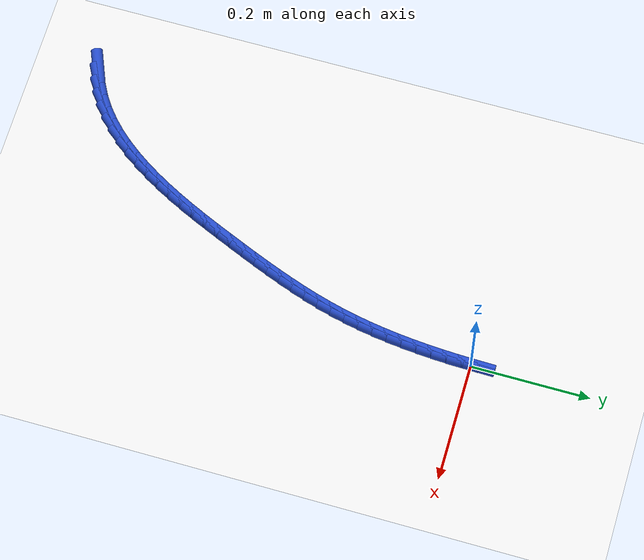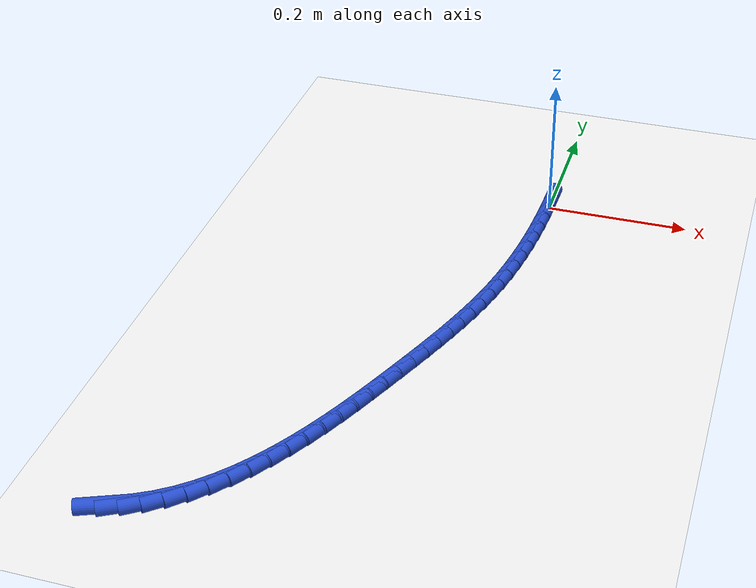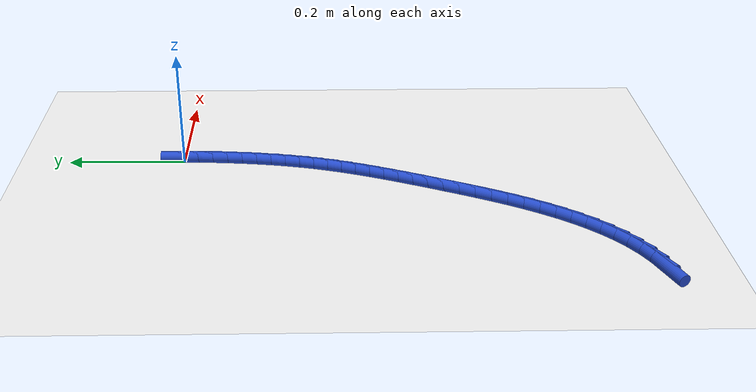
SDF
<sdf version="1.6">
 <world name="default">
  <model name="ground_plane">
   <static>1</static>
   <link name="link">
    <collision name="collision">
     <geometry><plane><normal>0 0 1</normal><size>100 100</size></plane></geometry>
     <surface><friction><ode><mu>100</mu><mu2>50</mu2></ode></friction></surface>
    </collision>
    <visual name="visual">
     <cast_shadows>0</cast_shadows>
     <geometry><plane><normal>0 0 1</normal><size>100 100</size></plane></geometry>
     <material>
      <script><uri>file://media/materials/scripts/gazebo.material</uri><name>Gazebo/WhiteGlow</name></script>
     </material>
    </visual>
   </link>
  </model>
  <model name="line">
   <link name="link_0">
    <pose>9.324138683375338e-18 0.0 0.01 0 1.57 1.5542884025742656</pose>
    <collision name="collision">
     <geometry><cylinder><radius>0.01</radius><length>0.08</length></cylinder></geometry>
    </collision>
    <visual name="visual">
     <material>
      <script><name>Gazebo/Blue</name><uri>file://media/materials/scripts/gazebo.material</uri></script>
     </material>
     <geometry><cylinder><radius>0.01</radius><length>0.08</length></cylinder></geometry>
    </visual>
   </link>
   <link name="link_247">
    <pose>-0.3375549823228683 -0.7438703071350752 0.01 0 1.57 0.3916176734886734</pose>
    <collision name="collision">
     <geometry><cylinder><radius>0.01</radius><length>0.08</length></cylinder></geometry>
    </collision>
    <visual name="visual">
     <material>
      <script><name>Gazebo/Blue</name><uri>file://media/materials/scripts/gazebo.material</uri></script>
     </material>
     <geometry><cylinder><radius>0.01</radius><length>0.08</length></cylinder></geometry>
    </visual>
   </link>
   <link name="link_248">
    <pose>-0.3148946030392443 -0.7345127673983755 0.01 0 1.57 0.4972462812217199</pose>
    <collision name="collision">
     <geometry><cylinder><radius>0.01</radius><length>0.08</length></cylinder></geometry>
    </collision>
    <visual name="visual">
     <material>
      <script><name>Gazebo/Blue</name><uri>file://media/materials/scripts/gazebo.material</uri></script>
     </material>
     <geometry><cylinder><radius>0.01</radius><length>0.08</length></cylinder></geometry>
    </visual>
   </link>
   <link name="link_249">
    <pose>-0.2935336783476625 -0.72291950370808 0.01 0 1.57 0.5989869566748104</pose>
    <collision name="collision">
     <geometry><cylinder><radius>0.01</radius><length>0.08</length></cylinder></geometry>
    </collision>
    <visual name="visual">
     <material>
      <script><name>Gazebo/Blue</name><uri>file://media/materials/scripts/gazebo.material</uri></script>
     </material>
     <geometry><cylinder><radius>0.01</radius><length>0.08</length></cylinder></geometry>
    </visual>
   </link>
   <link name="link_250">
    <pose>-0.27343452804937374 -0.709198805762934 0.01 0 1.57 0.6917821782130069</pose>
    <collision name="collision">
     <geometry><cylinder><radius>0.01</radius><length>0.08</length></cylinder></geometry>
    </collision>
    <visual name="visual">
     <material>
      <script><name>Gazebo/Blue</name><uri>file://media/materials/scripts/gazebo.material</uri></script>
     </material>
     <geometry><cylinder><radius>0.01</radius><length>0.08</length></cylinder></geometry>
    </visual>
   </link>
   <link name="link_251">
    <pose>-0.2545236350105253 -0.693534219335541 0.01 0 1.57 0.7748587361739022</pose>
    <collision name="collision">
     <geometry><cylinder><radius>0.01</radius><length>0.08</length></cylinder></geometry>
    </collision>
    <visual name="visual">
     <material>
      <script><name>Gazebo/Blue</name><uri>file://media/materials/scripts/gazebo.material</uri></script>
     </material>
     <geometry><cylinder><radius>0.01</radius><length>0.08</length></cylinder></geometry>
    </visual>
   </link>
   <link name="link_252">
    <pose>-0.23672748209726358 -0.6761092901985052 0.01 0 1.57 0.8481514059467455</pose>
    <collision name="collision">
     <geometry><cylinder><radius>0.01</radius><length>0.08</length></cylinder></geometry>
    </collision>
    <visual name="visual">
     <material>
      <script><name>Gazebo/Blue</name><uri>file://media/materials/scripts/gazebo.material</uri></script>
     </material>
     <geometry><cylinder><radius>0.01</radius><length>0.08</length></cylinder></geometry>
    </visual>
   </link>
   <link name="link_253">
    <pose>-0.21997255217573658 -0.6571075641244312 0.01 0 1.57 0.9120649667113058</pose>
    <collision name="collision">
     <geometry><cylinder><radius>0.01</radius><length>0.08</length></cylinder></geometry>
    </collision>
    <visual name="visual">
     <material>
      <script><name>Gazebo/Blue</name><uri>file://media/materials/scripts/gazebo.material</uri></script>
     </material>
     <geometry><cylinder><radius>0.01</radius><length>0.08</length></cylinder></geometry>
    </visual>
   </link>
   <link name="link_254">
    <pose>-0.20418532811209078 -0.6367125868859224 0.01 0 1.57 0.9672586209342462</pose>
    <collision name="collision">
     <geometry><cylinder><radius>0.01</radius><length>0.08</length></cylinder></geometry>
    </collision>
    <visual name="visual">
     <material>
      <script><name>Gazebo/Blue</name><uri>file://media/materials/scripts/gazebo.material</uri></script>
     </material>
     <geometry><cylinder><radius>0.01</radius><length>0.08</length></cylinder></geometry>
    </visual>
   </link>
   <link name="link_255">
    <pose>-0.18929229277247306 -0.6151079042555827 0.01 0 1.57 1.014485319596377</pose>
    <collision name="collision">
     <geometry><cylinder><radius>0.01</radius><length>0.08</length></cylinder></geometry>
    </collision>
    <visual name="visual">
     <material>
      <script><name>Gazebo/Blue</name><uri>file://media/materials/scripts/gazebo.material</uri></script>
     </material>
     <geometry><cylinder><radius>0.01</radius><length>0.08</length></cylinder></geometry>
    </visual>
   </link>
   <link name="link_256">
    <pose>-0.17521992902303052 -0.5924770620060165 0.01 0 1.57 1.0544871382751912</pose>
    <collision name="collision">
     <geometry><cylinder><radius>0.01</radius><length>0.08</length></cylinder></geometry>
    </collision>
    <visual name="visual">
     <material>
      <script><name>Gazebo/Blue</name><uri>file://media/materials/scripts/gazebo.material</uri></script>
     </material>
     <geometry><cylinder><radius>0.01</radius><length>0.08</length></cylinder></geometry>
    </visual>
   </link>
   <link name="link_257">
    <pose>-0.16189471972990999 -0.5690036059098275 0.01 0 1.57 1.087934327696388</pose>
    <collision name="collision">
     <geometry><cylinder><radius>0.01</radius><length>0.08</length></cylinder></geometry>
    </collision>
    <visual name="visual">
     <material>
      <script><name>Gazebo/Blue</name><uri>file://media/materials/scripts/gazebo.material</uri></script>
     </material>
     <geometry><cylinder><radius>0.01</radius><length>0.08</length></cylinder></geometry>
    </visual>
   </link>
   <link name="link_258">
    <pose>-0.14924314775925857 -0.5448710817396195 0.01 0 1.57 1.1153934004250596</pose>
    <collision name="collision">
     <geometry><cylinder><radius>0.01</radius><length>0.08</length></cylinder></geometry>
    </collision>
    <visual name="visual">
     <material>
      <script><name>Gazebo/Blue</name><uri>file://media/materials/scripts/gazebo.material</uri></script>
     </material>
     <geometry><cylinder><radius>0.01</radius><length>0.08</length></cylinder></geometry>
    </visual>
   </link>
   <link name="link_259">
    <pose>-0.1371916959772231 -0.5202630352679968 0.01 0 1.57 1.1373120692496437</pose>
    <collision name="collision">
     <geometry><cylinder><radius>0.01</radius><length>0.08</length></cylinder></geometry>
    </collision>
    <visual name="visual">
     <material>
      <script><name>Gazebo/Blue</name><uri>file://media/materials/scripts/gazebo.material</uri></script>
     </material>
     <geometry><cylinder><radius>0.01</radius><length>0.08</length></cylinder></geometry>
    </visual>
   </link>
   <link name="link_260">
    <pose>-0.12566684724995072 -0.49536301226756313 0.01 0 1.57 1.1540122444158134</pose>
    <collision name="collision">
     <geometry><cylinder><radius>0.01</radius><length>0.08</length></cylinder></geometry>
    </collision>
    <visual name="visual">
     <material>
      <script><name>Gazebo/Blue</name><uri>file://media/materials/scripts/gazebo.material</uri></script>
     </material>
     <geometry><cylinder><radius>0.01</radius><length>0.08</length></cylinder></geometry>
    </visual>
   </link>
   <link name="link_261">
    <pose>-0.11459508444358793 -0.47035455851092184 0.01 0 1.57 1.1656850839300619</pose>
    <collision name="collision">
     <geometry><cylinder><radius>0.01</radius><length>0.08</length></cylinder></geometry>
    </collision>
    <visual name="visual">
     <material>
      <script><name>Gazebo/Blue</name><uri>file://media/materials/scripts/gazebo.material</uri></script>
     </material>
     <geometry><cylinder><radius>0.01</radius><length>0.08</length></cylinder></geometry>
    </visual>
   </link>
   <link name="link_262">
    <pose>-0.10390289042428241 -0.44542121977067844 0.01 0 1.57 1.1725944727572672</pose>
    <collision name="collision">
     <geometry><cylinder><radius>0.01</radius><length>0.08</length></cylinder></geometry>
    </collision>
    <visual name="visual">
     <material>
      <script><name>Gazebo/Blue</name><uri>file://media/materials/scripts/gazebo.material</uri></script>
     </material>
     <geometry><cylinder><radius>0.01</radius><length>0.08</length></cylinder></geometry>
    </visual>
   </link>
   <link name="link_263">
    <pose>-0.093520132418151 -0.42074004850993246 0.01 0 1.57 1.1788548762706434</pose>
    <collision name="collision">
     <geometry><cylinder><radius>0.01</radius><length>0.08</length></cylinder></geometry>
    </collision>
    <visual name="visual">
     <material>
      <script><name>Gazebo/Blue</name><uri>file://media/materials/scripts/gazebo.material</uri></script>
     </material>
     <geometry><cylinder><radius>0.01</radius><length>0.08</length></cylinder></geometry>
    </visual>
   </link>
   <link name="link_264">
    <pose>-0.08344331806029424 -0.39636023939746423 0.01 0 1.57 1.188330469104854</pose>
    <collision name="collision">
     <geometry><cylinder><radius>0.01</radius><length>0.08</length></cylinder></geometry>
    </collision>
    <visual name="visual">
     <material>
      <script><name>Gazebo/Blue</name><uri>file://media/materials/scripts/gazebo.material</uri></script>
     </material>
     <geometry><cylinder><radius>0.01</radius><length>0.08</length></cylinder></geometry>
    </visual>
   </link>
   <link name="link_265">
    <pose>-0.07372990994200297 -0.3722140375459166 0.01 0 1.57 1.2012483178107938</pose>
    <collision name="collision">
     <geometry><cylinder><radius>0.01</radius><length>0.08</length></cylinder></geometry>
    </collision>
    <visual name="visual">
     <material>
      <script><name>Gazebo/Blue</name><uri>file://media/materials/scripts/gazebo.material</uri></script>
     </material>
     <geometry><cylinder><radius>0.01</radius><length>0.08</length></cylinder></geometry>
    </visual>
   </link>
   <link name="link_266">
    <pose>-0.06443961508857116 -0.3482293818461447 0.01 0 1.57 1.2176589001851406</pose>
    <collision name="collision">
     <geometry><cylinder><radius>0.01</radius><length>0.08</length></cylinder></geometry>
    </collision>
    <visual name="visual">
     <material>
      <script><name>Gazebo/Blue</name><uri>file://media/materials/scripts/gazebo.material</uri></script>
     </material>
     <geometry><cylinder><radius>0.01</radius><length>0.08</length></cylinder></geometry>
    </visual>
   </link>
   <link name="link_267">
    <pose>-0.055632140525292764 -0.3243342111890036 0.01 0 1.57 1.2375679807673965</pose>
    <collision name="collision">
     <geometry><cylinder><radius>0.01</radius><length>0.08</length></cylinder></geometry>
    </collision>
    <visual name="visual">
     <material>
      <script><name>Gazebo/Blue</name><uri>file://media/materials/scripts/gazebo.material</uri></script>
     </material>
     <geometry><cylinder><radius>0.01</radius><length>0.08</length></cylinder></geometry>
    </visual>
   </link>
   <link name="link_268">
    <pose>-0.04736719327746175 -0.30045646446534824 0.01 0 1.57 1.2609285101806338</pose>
    <collision name="collision">
     <geometry><cylinder><radius>0.01</radius><length>0.08</length></cylinder></geometry>
    </collision>
    <visual name="visual">
     <material>
      <script><name>Gazebo/Blue</name><uri>file://media/materials/scripts/gazebo.material</uri></script>
     </material>
     <geometry><cylinder><radius>0.01</radius><length>0.08</length></cylinder></geometry>
    </visual>
   </link>
   <link name="link_269">
    <pose>-0.03970448037037211 -0.2765240805660338 0.01 0 1.57 1.2876328745320944</pose>
    <collision name="collision">
     <geometry><cylinder><radius>0.01</radius><length>0.08</length></cylinder></geometry>
    </collision>
    <visual name="visual">
     <material>
      <script><name>Gazebo/Blue</name><uri>file://media/materials/scripts/gazebo.material</uri></script>
     </material>
     <geometry><cylinder><radius>0.01</radius><length>0.08</length></cylinder></geometry>
    </visual>
   </link>
   <link name="link_270">
    <pose>-0.03270370882931758 -0.25246499838191433 0.01 0 1.57 1.3175064916408097</pose>
    <collision name="collision">
     <geometry><cylinder><radius>0.01</radius><length>0.08</length></cylinder></geometry>
    </collision>
    <visual name="visual">
     <material>
      <script><name>Gazebo/Blue</name><uri>file://media/materials/scripts/gazebo.material</uri></script>
     </material>
     <geometry><cylinder><radius>0.01</radius><length>0.08</length></cylinder></geometry>
    </visual>
   </link>
   <link name="link_271">
    <pose>-0.026424585679592563 -0.22820715680384646 0.01 0 1.57 1.34992185243951</pose>
    <collision name="collision">
     <geometry><cylinder><radius>0.01</radius><length>0.08</length></cylinder></geometry>
    </collision>
    <visual name="visual">
     <material>
      <script><name>Gazebo/Blue</name><uri>file://media/materials/scripts/gazebo.material</uri></script>
     </material>
     <geometry><cylinder><radius>0.01</radius><length>0.08</length></cylinder></geometry>
    </visual>
   </link>
   <link name="link_272">
    <pose>-0.020918620314330102 -0.20368582784034547 0.01 0 1.57 1.3815254036188989</pose>
    <collision name="collision">
     <geometry><cylinder><radius>0.01</radius><length>0.08</length></cylinder></geometry>
    </collision>
    <visual name="visual">
     <material>
      <script><name>Gazebo/Blue</name><uri>file://media/materials/scripts/gazebo.material</uri></script>
     </material>
     <geometry><cylinder><radius>0.01</radius><length>0.08</length></cylinder></geometry>
    </visual>
   </link>
   <link name="link_273">
    <pose>-0.016169898509421507 -0.17889659668654848 0.01 0 1.57 1.4107623076693923</pose>
    <collision name="collision">
     <geometry><cylinder><radius>0.01</radius><length>0.08</length></cylinder></geometry>
    </collision>
    <visual name="visual">
     <material>
      <script><name>Gazebo/Blue</name><uri>file://media/materials/scripts/gazebo.material</uri></script>
     </material>
     <geometry><cylinder><radius>0.01</radius><length>0.08</length></cylinder></geometry>
    </visual>
   </link>
   <link name="link_274">
    <pose>-0.01212938675531222 -0.15386467509465943 0.01 0 1.57 1.4376609301156784</pose>
    <collision name="collision">
     <geometry><cylinder><radius>0.01</radius><length>0.08</length></cylinder></geometry>
    </collision>
    <visual name="visual">
     <material>
      <script><name>Gazebo/Blue</name><uri>file://media/materials/scripts/gazebo.material</uri></script>
     </material>
     <geometry><cylinder><radius>0.01</radius><length>0.08</length></cylinder></geometry>
    </visual>
   </link>
   <link name="link_275">
    <pose>-0.008747822064547928 -0.12861548009426052 0.01 0 1.57 1.4622713323966618</pose>
    <collision name="collision">
     <geometry><cylinder><radius>0.01</radius><length>0.08</length></cylinder></geometry>
    </collision>
    <visual name="visual">
     <material>
      <script><name>Gazebo/Blue</name><uri>file://media/materials/scripts/gazebo.material</uri></script>
     </material>
     <geometry><cylinder><radius>0.01</radius><length>0.08</length></cylinder></geometry>
    </visual>
   </link>
   <link name="link_276">
    <pose>-0.0059759414496743015 -0.10317442871493422 0.01 0 1.57 1.4846501942991475</pose>
    <collision name="collision">
     <geometry><cylinder><radius>0.01</radius><length>0.08</length></cylinder></geometry>
    </collision>
    <visual name="visual">
     <material>
      <script><name>Gazebo/Blue</name><uri>file://media/materials/scripts/gazebo.material</uri></script>
     </material>
     <geometry><cylinder><radius>0.01</radius><length>0.08</length></cylinder></geometry>
    </visual>
   </link>
   <link name="link_277">
    <pose>-0.003764481923237023 -0.07756693798626274 0.01 0 1.57 1.5048571241567659</pose>
    <collision name="collision">
     <geometry><cylinder><radius>0.01</radius><length>0.08</length></cylinder></geometry>
    </collision>
    <visual name="visual">
     <material>
      <script><name>Gazebo/Blue</name><uri>file://media/materials/scripts/gazebo.material</uri></script>
     </material>
     <geometry><cylinder><radius>0.01</radius><length>0.08</length></cylinder></geometry>
    </visual>
   </link>
   <link name="link_278">
    <pose>-0.0020641804977817617 -0.051818424937828435 0.01 0 1.57 1.5229516177848026</pose>
    <collision name="collision">
     <geometry><cylinder><radius>0.01</radius><length>0.08</length></cylinder></geometry>
    </collision>
    <visual name="visual">
     <material>
      <script><name>Gazebo/Blue</name><uri>file://media/materials/scripts/gazebo.material</uri></script>
     </material>
     <geometry><cylinder><radius>0.01</radius><length>0.08</length></cylinder></geometry>
    </visual>
   </link>
   <link name="link_279">
    <pose>-0.0008257741858541685 -0.02595430659921287 0.01 0 1.57 1.538990594994548</pose>
    <collision name="collision">
     <geometry><cylinder><radius>0.01</radius><length>0.08</length></cylinder></geometry>
    </collision>
    <visual name="visual">
     <material>
      <script><name>Gazebo/Blue</name><uri>file://media/materials/scripts/gazebo.material</uri></script>
     </material>
     <geometry><cylinder><radius>0.01</radius><length>0.08</length></cylinder></geometry>
    </visual>
   </link>
   <link name="link_280">
    <pose>8.023096076392733e-18 5.551115123125783e-17 0.01 0 1.57 1.5530264281796653</pose>
    <collision name="collision">
     <geometry><cylinder><radius>0.01</radius><length>0.08</length></cylinder></geometry>
    </collision>
    <visual name="visual">
     <material>
      <script><name>Gazebo/Blue</name><uri>file://media/materials/scripts/gazebo.material</uri></script>
     </material>
     <geometry><cylinder><radius>0.01</radius><length>0.08</length></cylinder></geometry>
    </visual>
   </link>
  </model>
 </world>
</sdf>
